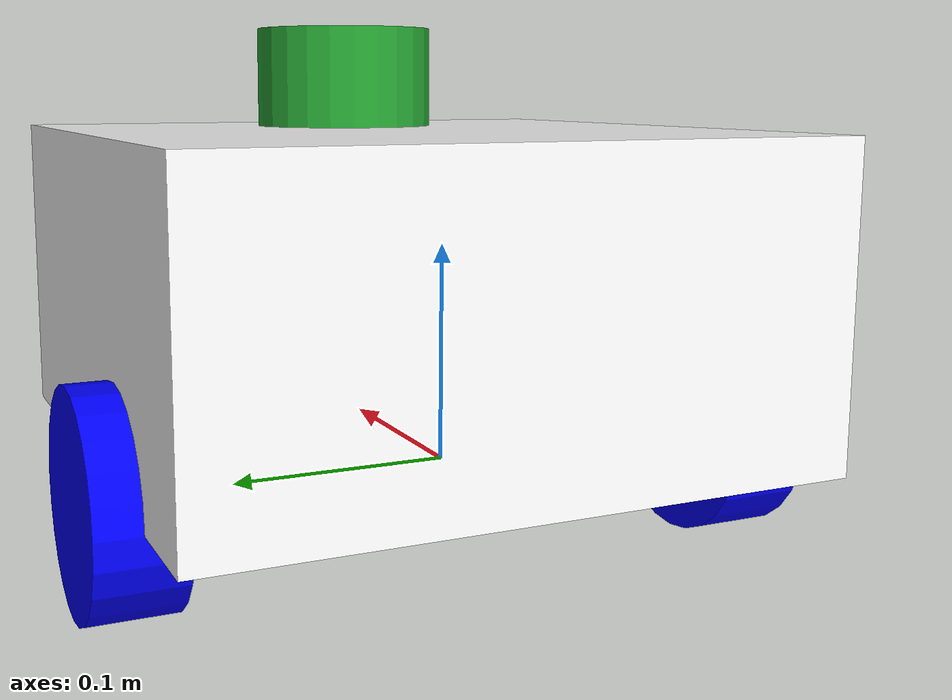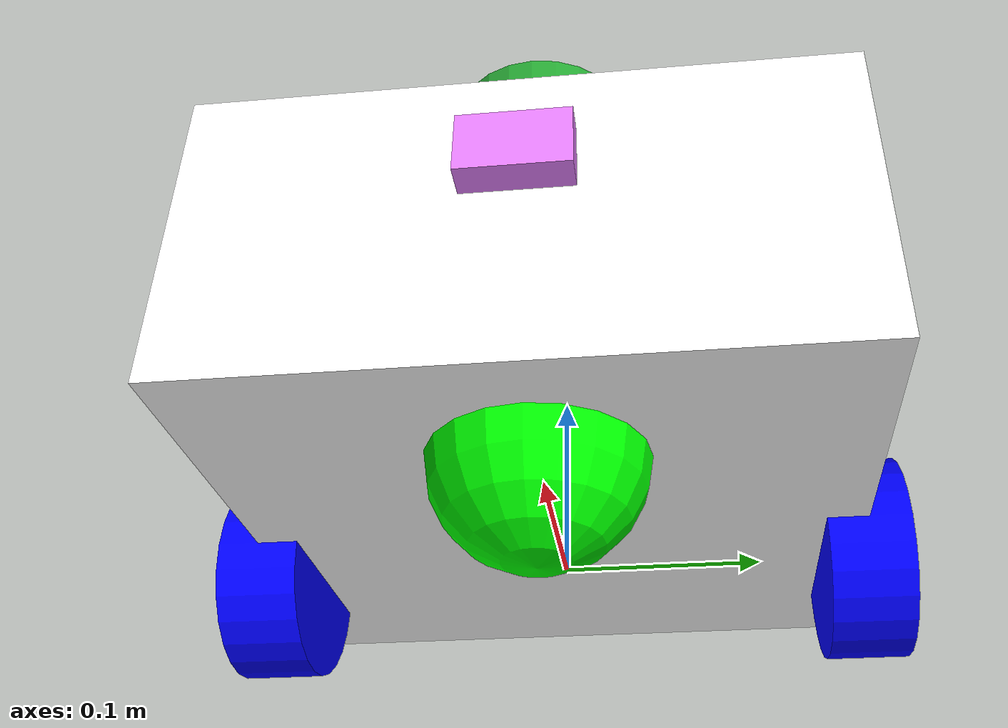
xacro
<?xml version="1.0"?>
<robot xmlns:xacro="http://www.ros.org/wiki/xacro"  name="bob">

    <xacro:include filename="variables.xacro"/>
    <xacro:include filename="general_macros.xacro" />
    <xacro:include filename="robot_core.xacro"/>
    <xacro:include filename="lidar.xacro"/>
    <xacro:include filename="camera.xacro"/>
    <xacro:include filename="ros2_control.xacro"/>

</robot>

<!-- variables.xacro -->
<robot xmlns:xacro="http://www.ros.org/wiki/xacro" name="bob">
    <!-- Robot core -->
    <xacro:property name="box_w" value="0.3" />
    <xacro:property name="box_l" value="0.3" />
    <xacro:property name="box_h" value="0.15" />
    <xacro:property name="wheel_r" value="0.05" />
    <xacro:property name="wheel_l" value="0.04" />

    <!-- Lidar -->
    <xacro:property name="lidar_r" value="0.045" />
    <xacro:property name="lidar_h" value="0.1" />

    <!-- Camera -->
    <xacro:property name="camera_l" value="0.03" />
    <xacro:property name="camera_w" value="0.05" />
    <xacro:property name="camera_h" value="0.03" />

</robot>

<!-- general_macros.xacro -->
<robot xmlns:xacro="http://www.ros.org/wiki/xacro" name="bob">
    <!-- Generate materials -->
    <xacro:macro name="gen_mat" params="color_name r g b a">
        <material name="${color_name}">
            <color rgba="${r} ${g} ${b} ${a}" />
        </material>
    </xacro:macro>
    <!-- Calculate intertial for basic shapes -->
    <xacro:macro name="inertial_box" params="mass l w h *block">
        <inertial>
            <xacro:insert_block name="block" />
            <mass value="${mass}" />
            <inertia ixx="${1/12 * mass * (h*h + l*l)}" ixy="0" ixz="0.0"
                iyy="${1/12 * mass * (l*l + w*w)}" iyz="0.0" izz="${1/12 * mass * (h*h + w*w)}" />
        </inertial>
    </xacro:macro>
    <xacro:macro name="inertial_cylinder" params="mass r h *block">
        <inertial>
            <xacro:insert_block name="block" />
            <mass value="${mass}" />
            <inertia ixx="${1/12 * mass * (h*h + 3*r*r)}" ixy="0.0" ixz="0.0"
                iyy="${1/12 * mass * (h*h + 3*r*r)}" iyz="0.0" izz="${1/12 * mass * (r * r)}" />
        </inertial>
    </xacro:macro>
    <xacro:macro name="inertial_sphere" params="mass r *block">
        <inertial>
            <xacro:insert_block name="block" />
            <mass value="${mass}" />
            <inertia ixx="${2/5 * mass * r * r}" ixy="0.0" ixz="0.0" iyy="${2/5 * mass * r * r}" iyz="0.0"
                izz="${2/5 * mass * r * r}" />
        </inertial>
    </xacro:macro>
</robot>

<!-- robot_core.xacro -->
<robot xmlns:xacro="http://www.ros.org/wiki/xacro" name="bob">

    <!-- Materials -->
    <xacro:gen_mat color_name="red" r="1.0" g="0.0" b="0.0" a="1.0" />
    <xacro:gen_mat color_name="green" r="0.0" g="1.0" b="0.0" a="1.0" />
    <xacro:gen_mat color_name="blue" r="0.0" g="0.0" b="1.0" a="1.0" />
    <xacro:gen_mat color_name="white" r="1.0" g="1.0" b="1.0" a="1.0" />
    <xacro:gen_mat color_name="pink" r="0.9" g="0.5" b="1.0" a="1.0" />

    <!--Gazebo
    Materials -->
    <gazebo reference="chassis">
        <material>
            Gazebo/White
        </material>
    </gazebo>
    <gazebo reference="left_wheel">
        <material>
            Gazebo/Blue
        </material>
    </gazebo>
    <gazebo reference="right_wheel">
        <material>
            Gazebo/Blue
        </material>
    </gazebo>
    <gazebo reference="caster_wheel">
        <material>
            Gazebo/Green
        </material>
        <mu1 value="0.001" />
        <mu2 value="0.001" />
    </gazebo>

    <xacro:macro name="spawn_wheel" params="wheel_name ref">
        <joint name="${wheel_name}_joint" type="continuous">
            <parent link="base_link" />
            <child link="${wheel_name}" />
            <origin xyz="0 ${-ref * (box_l / 2)} 0" rpy="${ref * pi/2} 0.0 0.0" />
            <axis xyz="0.0 0.0 ${-ref}" />
        </joint>

        <link name="${wheel_name}">
            <visual>
                <geometry>
                    <cylinder radius="${wheel_r}" length="${wheel_l}" />
                </geometry>
                <material name="blue" />
            </visual>
            <collision>
                <geometry>
                    <cylinder radius="${wheel_r}" length="${wheel_l}" />
                </geometry>
            </collision>
            <xacro:inertial_cylinder mass="0.1" r="${wheel_r}" h="${wheel_l}">
                <origin xyz="0.0 0.0 0.0" />
            </xacro:inertial_cylinder>
        </link>
    </xacro:macro>

    <link name="base_link">
    </link>
    <link name="base_footprint">
    </link>

    <joint name="base_footprint_joint" type="fixed">
        <parent link="base_link" />
        <child link="base_footprint" />
    </joint>

    <joint name="chassis_joint" type="fixed">
        <parent link="base_link" />
        <child link="chassis" />
        <origin xyz="-${(box_w - 0.1)/2} 0 0" rpy="0.0 0.0 0.0" />
    </joint>

    <link name="chassis">
        <visual>
            <origin xyz="${box_l/2} 0 ${box_h/2}" rpy="0.0 0.0 0.0" />
            <geometry>
                <box size="${box_l} ${box_w} ${box_h}" />
            </geometry>
            <material name="white" />
        </visual>
        <collision>
            <origin xyz="${box_l/2} 0 ${box_h/2}" rpy="0.0 0.0 0.0" />
            <geometry>
                <box size="${box_l} ${box_w} ${box_h}" />
            </geometry>
        </collision>
        <xacro:inertial_box mass="0.4" h="${box_h}" w="${box_w}" l="${box_l}">
            <origin xyz="${box_l/2} 0 ${box_h/2}" rpy="0.0 0.0 0.0" />
        </xacro:inertial_box>
    </link>

    <xacro:spawn_wheel wheel_name="left_wheel" ref="-1" />
    <xacro:spawn_wheel wheel_name="right_wheel" ref="1" />

    <joint name="caster_wheel_joint" type="fixed">
        <origin xyz="${box_l - 0.08} 0.0 0.0" rpy="0.0 0.0 0.0" />
        <parent link="chassis" />
        <child link="caster_wheel" />
    </joint>

    <link name="caster_wheel">
        <visual>
            <geometry>
                <sphere radius="${wheel_r}" />
            </geometry>
            <material name="green" />
        </visual>
        <collision>
            <geometry>
                <sphere radius="${wheel_r}" />
            </geometry>
        </collision>
        <xacro:inertial_sphere mass="0.1" r="${wheel_r}">
            <origin xyz="0.0 0.0 0.0" />
        </xacro:inertial_sphere>
    </link>
</robot>

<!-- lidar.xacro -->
<robot xmlns:xacro="http://www.ros.org/wiki/xacro" name="bob">

    <joint name="lidar_joint" type="fixed">
        <parent link="chassis" />
        <child link="lidar" />
        <origin xyz="${box_l - 0.08} 0 ${box_h} " />
    </joint>

    <link name="lidar">
        <visual>
            <geometry>
                <cylinder radius="${lidar_r}" length="${lidar_h}" />
            </geometry>
        </visual>
        <collision>
            <geometry>
                <cylinder radius="${lidar_r}" length="${lidar_h}" />
            </geometry>
        </collision>
        <xacro:inertial_cylinder mass="0.2" r="${lidar_r}" h="${lidar_h}">
            <origin xyz="0.0 0.0 0.0" />
        </xacro:inertial_cylinder>
    </link>

    <gazebo reference="lidar">
        <material>
            Gazebo/Green
        </material>

        <sensor type="ray" name="laser">
            <pose>0 0 0 0 0 0</pose>
            <visualize>false</visualize>
            <update_rate>10</update_rate>
            <ray>
                <scan>
                    <horizontal>
                        <samples>360</samples>
                        <resolution>1</resolution>
                        <min_angle>-${pi}</min_angle>
                        <max_angle>${pi}</max_angle>
                    </horizontal>
                </scan>
                <range>
                    <min>0.3</min>
                    <max>20</max>
                    <resolution>0.01</resolution>
                </range>
            </ray>
            <plugin name="lidar_controller" filename="libgazebo_ros_ray_sensor.so">
                <ros>
                    <argument>--ros-args</argument>
                    <argument>--remap</argument>
                    <argument>~/out:=scan</argument>
                </ros>
                <output_type>sensor_msgs/LaserScan</output_type>
                <frame_name>lidar</frame_name>
            </plugin>
        </sensor>

    </gazebo>

</robot>

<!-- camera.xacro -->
<robot xmlns:xacro="http://www.ros.org/wiki/xacro" name="bob">
    <joint name="camera_joint" type="fixed">
        <parent link="chassis" />
        <child link="camera_frame" />
        <origin xyz="${box_l} 0.0 ${box_h - 0.05}" />
    </joint>

    <joint name="camera_optical_joint" type="fixed">
        <parent link="camera_frame" />
        <child link="camera_link_optical" />
        <origin rpy="${-pi/2} 0 ${-pi/2}"/>
    </joint>

    <link name="camera_link_optical">
    </link>

    <link name="camera_frame">
        <visual>
            <origin xyz="0.0 0.0 0.0" rpy="0.0 ${pi/2} 0.0" />
            <geometry>
                <box size="${camera_l} ${camera_w} ${camera_h}" />
            </geometry>
            <material name="pink" />
        </visual>
        <collision>
            <origin xyz="0.0 0.0 0.0" rpy="0.0 0.0 0.0" />
            <geometry>
                <box size="${camera_l} ${camera_w} ${camera_h}" />
            </geometry>
        </collision>
        <xacro:inertial_box mass="0.3" h="${camera_h}" l="${camera_l}" w="${camera_w}">
            <origin xyz="0.0 0.0 0.0" />
        </xacro:inertial_box>
    </link>

    <gazebo reference="camera_frame">
        <material>
           Gazebo/Purple
        </material>

        <sensor type="camera" name="main_camera">
            <update_rate>30</update_rate>
            <visualize>true</visualize>
            <camera name="head">
                <horizontal_fov>${pi/2}</horizontal_fov>
                <image>
                    <width>800</width>
                    <height>800</height>
                    <format>R8G8B8</format>
                </image>
                <clip>
                    <near>0.02</near>
                    <far>200</far>
                </clip>
            </camera>
            <plugin name="camera_controller" filename="libgazebo_ros_camera.so">
                <alwaysOn>true</alwaysOn>
                <updateRate>0</updateRate>
                <cameraName>bob/main_camera</cameraName>
                <imageTopicName>image_raw</imageTopicName>
                <cameraInfoTopicName>camera_info</cameraInfoTopicName>
                <frameName>camera_link_optical</frameName>
                <hackBaseline>0.07</hackBaseline>
                <distortionK1>0.0</distortionK1>
                <distortionK2>0.0</distortionK2>
                <distortionK3>0.0</distortionK3>
                <distortionT1>0.0</distortionT1>
                <distortionT2>0.0</distortionT2>
            </plugin>
        </sensor>

    </gazebo>

</robot>
